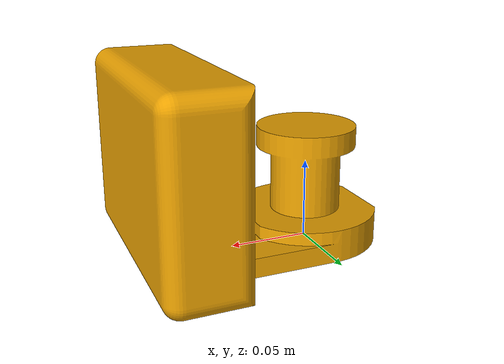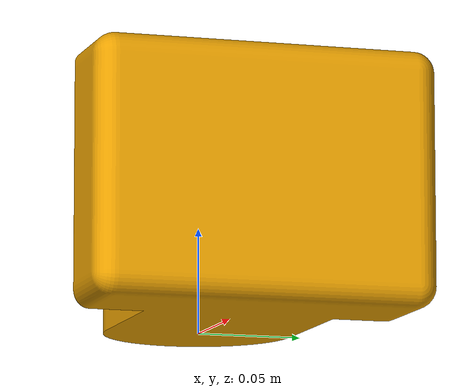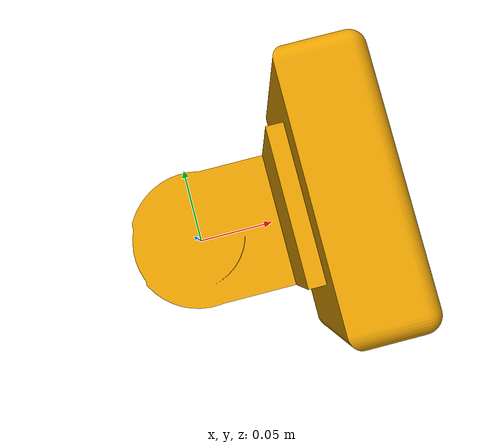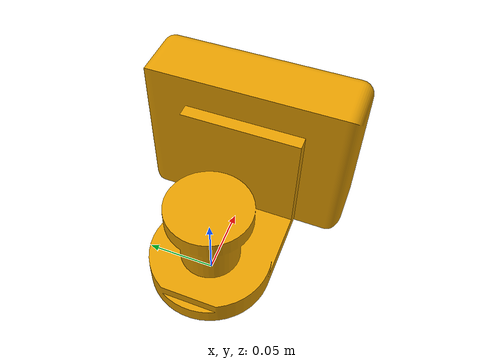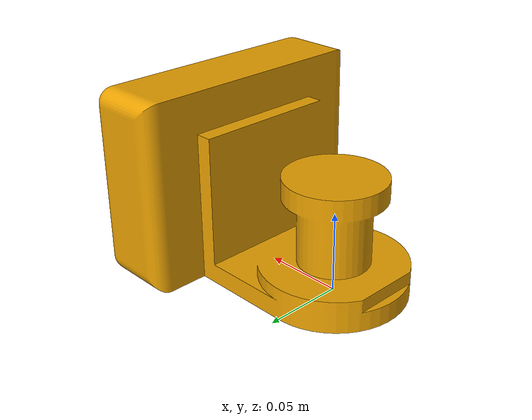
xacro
<?xml version="1.0"?>
<robot name="simple_camera">

    <link name="base_link">
      <visual>
        <origin xyz="0 0 0" rpy="0 0 0"/>
        <geometry>
          <mesh filename="package://moveit_resources_panda_camera_description/meshes/visual/camera_with_adapter.dae"/>
        </geometry>
      </visual>
      <collision>
        <origin xyz="0 0 0" rpy="0 0 0"/>
        <geometry>
          <mesh filename="package://moveit_resources_panda_camera_description/meshes/visual/camera_with_adapter.stl"/>
        </geometry>
      </collision>
      <inertial>
        <mass value="1.0"/>
        <origin xyz="0 0 0" rpy="0 0 0"/>
        <inertia ixx="0.01" iyy="0.01" izz="0.01" ixy="0" ixz="0" iyz="0"/>
      </inertial>
    </link>

</robot>
